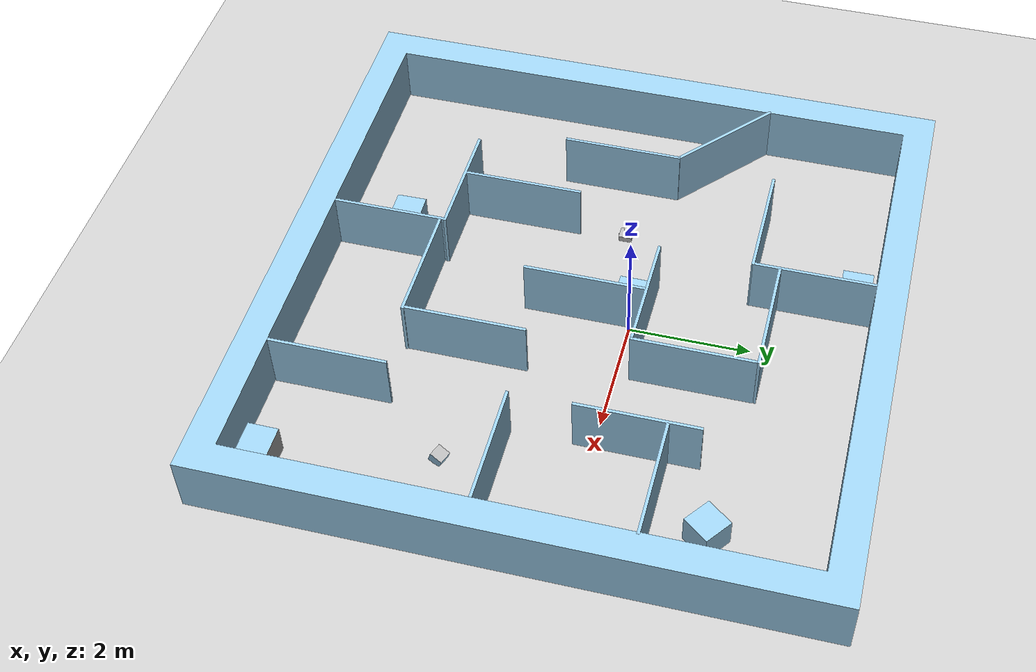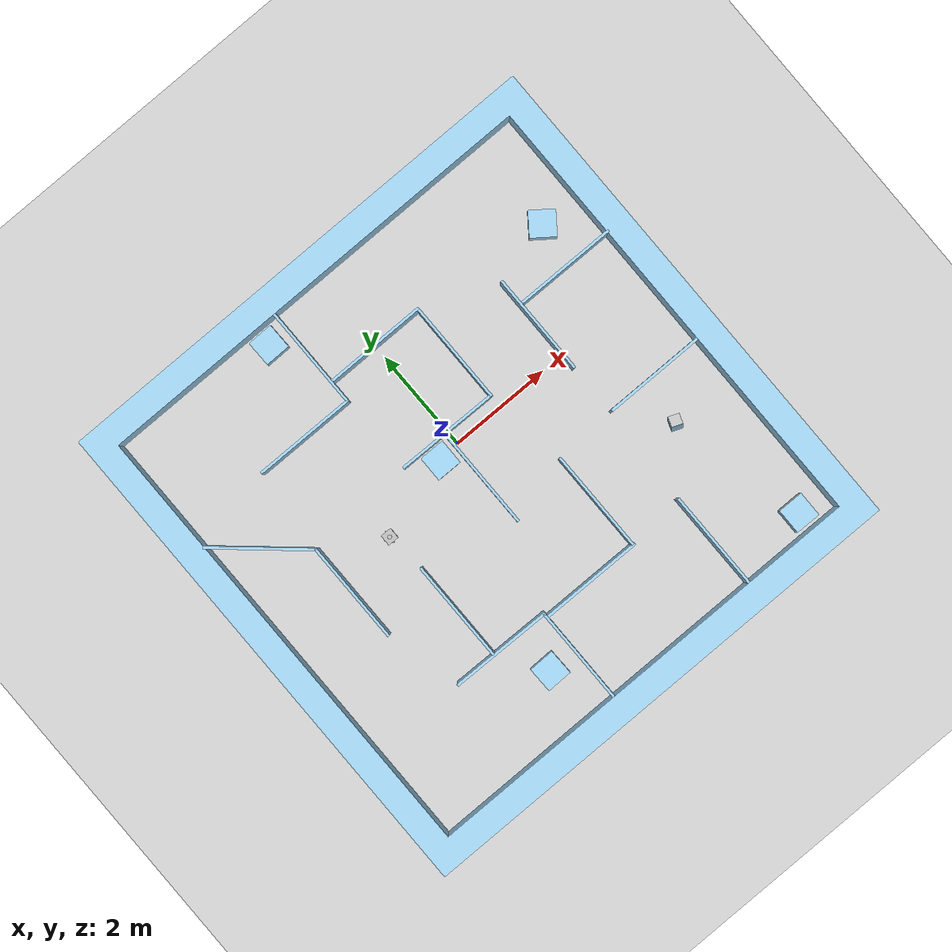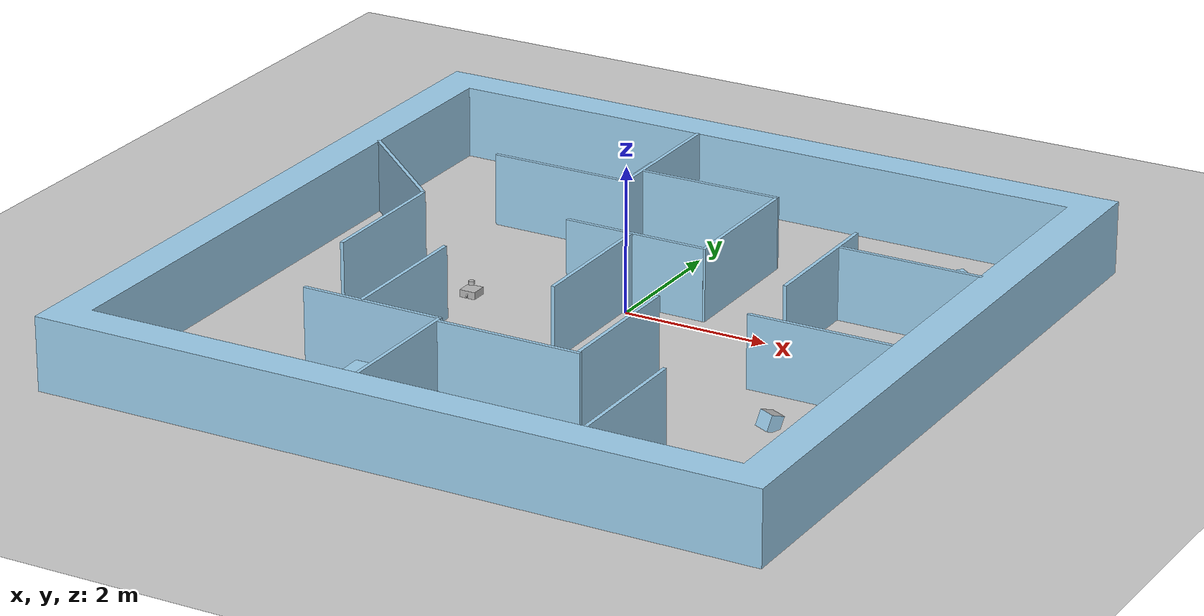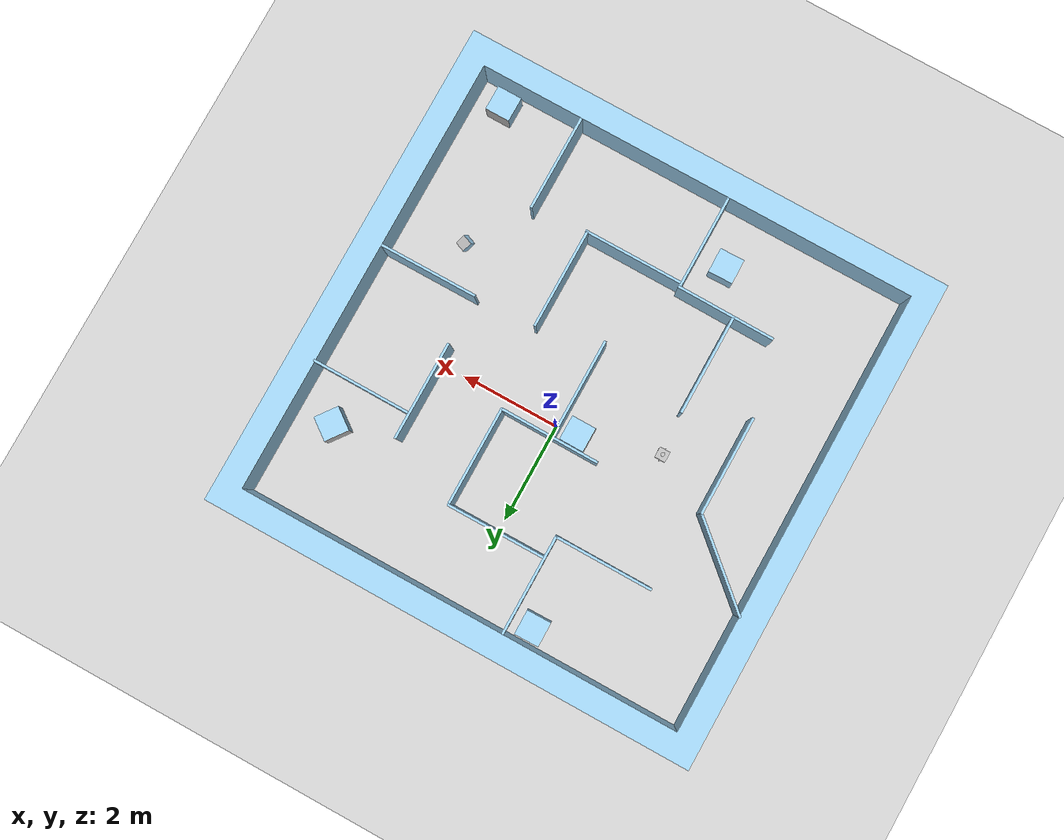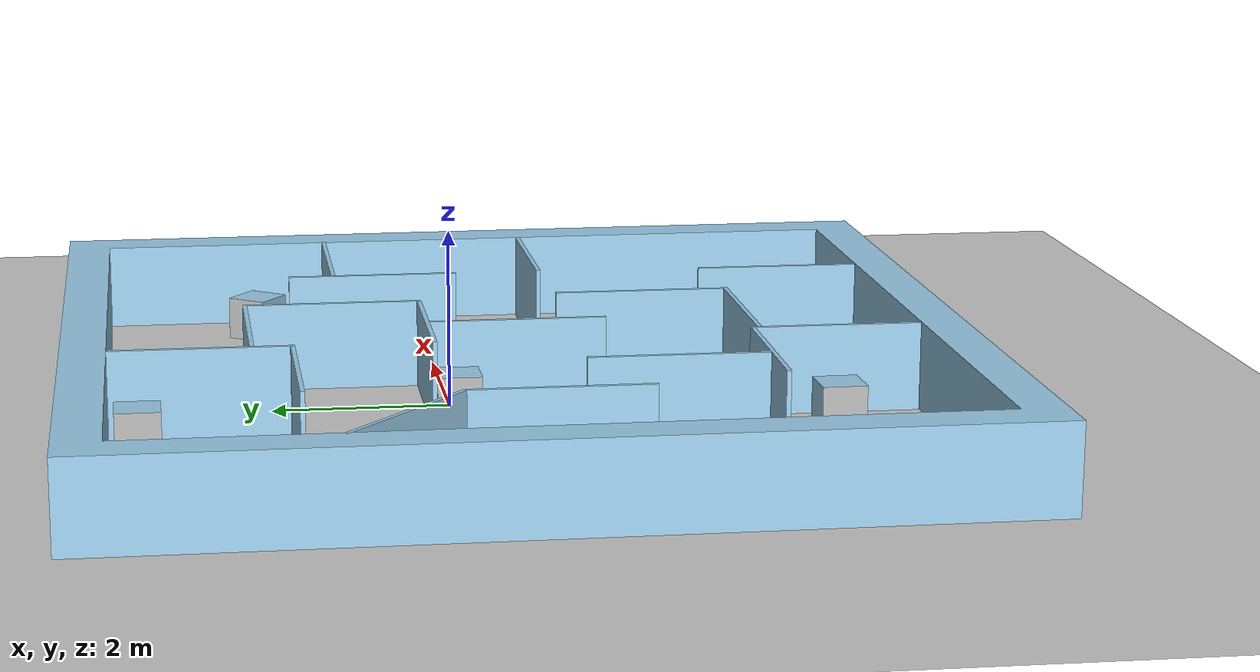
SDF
<sdf version='1.10'>
  <world name='apriltag_world'>
     <physics name="ode" type="ode">
      <max_step_size>0.001</max_step_size>
      <real_time_factor>1.0</real_time_factor>
      <real_time_update_rate>1000</real_time_update_rate>

      <ode>
        <solver>
          <type>quick</type>
          <iters>100</iters>
          <sor>1.3</sor>
        </solver>
        <constraints>
          <cfm>1e-5</cfm>
          <erp>0.2</erp>
        </constraints>
      </ode>
    </physics>
    <plugin name='gz::sim::systems::Physics' filename='gz-sim-physics-system'/>
    <plugin name='gz::sim::systems::UserCommands' filename='gz-sim-user-commands-system'/>
    <plugin name='gz::sim::systems::SceneBroadcaster' filename='gz-sim-scene-broadcaster-system'/>
    <plugin name='gz::sim::systems::Contact' filename='gz-sim-contact-system'/>
    <plugin name='gz::sim::systems::Sensors' filename='gz-sim-sensors-system'>
      <render_engine>ogre2</render_engine>
    </plugin>
    <plugin name="gz::sim::systems::Imu" filename="gz-sim-imu-system"/>
     <gravity>0 0 -9.8000000000000007</gravity>
    <magnetic_field>5.5644999999999998e-06 2.2875799999999999e-05 -4.2388400000000002e-05</magnetic_field>
    <atmosphere type='adiabatic'/>
    <scene>
      <ambient>0.400000006 0.400000006 0.400000006 1</ambient>
      <background>0.699999988 0.699999988 0.699999988 1</background>
      <shadows>true</shadows>
    </scene>
    <model name='ground_plane'>
      <static>true</static>
      <link name='link'>
        <collision name='collision'>
          <geometry>
            <plane>
              <normal>0 0 1</normal>
              <size>100 100</size>
            </plane>
          </geometry>
          <surface>
            <friction>
              <ode/>
            </friction>
            <bounce/>
            <contact/>
          </surface>
        </collision>
        <visual name='visual'>
          <geometry>
            <plane>
              <normal>0 0 1</normal>
              <size>100 100</size>
            </plane>
          </geometry>
          <material>
            <ambient>0.800000012 0.800000012 0.800000012 1</ambient>
            <diffuse>0.800000012 0.800000012 0.800000012 1</diffuse>
            <specular>0.800000012 0.800000012 0.800000012 1</specular>
          </material>
        </visual>
        <pose>0 0 0 0 0 0</pose>
        <inertial>
          <pose>0 0 0 0 0 0</pose>
          <mass>1</mass>
          <inertia>
            <ixx>1</ixx>
            <ixy>0</ixy>
            <ixz>0</ixz>
            <iyy>1</iyy>
            <iyz>0</iyz>
            <izz>1</izz>
          </inertia>
        </inertial>
        <enable_wind>false</enable_wind>
      </link>
      <pose>0 0 0 0 0 0</pose>
      <self_collide>false</self_collide>
    </model>
    <model name='apriltag_id_5'>
      <link name='link'>
        <visual name='visual'>
          <geometry>
            <mesh>
              <uri>apriltag_id_5.dae</uri>
              <scale>0.5 0.5 0.5</scale>
            </mesh>
          </geometry>
        </visual>
        <collision name='collision'>
          <geometry>
            <mesh>
              <uri>apriltag_id_5.dae</uri>
            </mesh>
          </geometry>
        </collision>
        <pose>0 0 0 0 0 0</pose>
        <inertial>
          <pose>0 0 0 0 0 0</pose>
          <mass>1</mass>
          <inertia>
            <ixx>1</ixx>
            <ixy>0</ixy>
            <ixz>0</ixz>
            <iyy>1</iyy>
            <iyz>0</iyz>
            <izz>1</izz>
          </inertia>
        </inertial>
        <enable_wind>false</enable_wind>
      </link>
      <pose>-1.4349983930587769 3.4875249862670898 -0.033252596855163574 6.3820801595628743e-08 3.8693499194046551e-08 -3.1324099995118666</pose>
      <static>true</static>
      <self_collide>false</self_collide>
    </model>
    <model name='apriltag_id_1'>
      <link name='link'>
        <visual name='visual'>
          <geometry>
            <mesh>
              <uri>apriltag_id_1.dae</uri>
              <scale>0.5 0.5 0.5</scale>
            </mesh>
          </geometry>
        </visual>
        <collision name='collision'>
          <geometry>
            <mesh>
              <uri>apriltag_id_1.dae</uri>
            </mesh>
          </geometry>
        </collision>
        <pose>0 0 0 0 0 0</pose>
        <inertial>
          <pose>0 0 0 0 0 0</pose>
          <mass>1</mass>
          <inertia>
            <ixx>1</ixx>
            <ixy>0</ixy>
            <ixz>0</ixz>
            <iyy>1</iyy>
            <iyz>0</iyz>
            <izz>1</izz>
          </inertia>
        </inertial>
        <enable_wind>false</enable_wind>
      </link>
      <pose>-0.42523029446601868 0.35039028525352478 0.24836927652359009 -1.5740699860844178 -0.0027571997383155958 3.1361600002111238</pose>
      <static>true</static>
      <self_collide>false</self_collide>
    </model>
    <model name='apriltag_id_2'>
      <link name='link'>
        <visual name='visual'>
          <geometry>
            <mesh>
              <uri>apriltag_id_2.dae</uri>
              <scale>0.5 0.5 0.5</scale>
            </mesh>
          </geometry>
        </visual>
        <collision name='collision'>
          <geometry>
            <mesh>
              <uri>apriltag_id_2.dae</uri>
            </mesh>
          </geometry>
        </collision>
        <pose>0 0 0 0 0 0</pose>
        <inertial>
          <pose>0 0 0 0 0 0</pose>
          <mass>1</mass>
          <inertia>
            <ixx>1</ixx>
            <ixy>0</ixy>
            <ixz>0</ixz>
            <iyy>1</iyy>
            <iyz>0</iyz>
            <izz>1</izz>
          </inertia>
        </inertial>
        <enable_wind>false</enable_wind>
      </link>
      <pose>3.6687350273132324 1.9999301433563232 0.56916892528533936 -3.1396199999491197 -0.00085396996937193374 2.4993999678469643</pose>
      <static>true</static>
      <self_collide>false</self_collide>
    </model>
    <model name='apriltag_id_3'>
      <link name='link'>
        <visual name='visual'>
          <geometry>
            <mesh>
              <uri>apriltag_id_3.dae</uri>
              <scale>0.5 0.5 0.5</scale>
            </mesh>
          </geometry>
        </visual>
        <collision name='collision'>
          <geometry>
            <mesh>
              <uri>apriltag_id_3.dae</uri>
            </mesh>
          </geometry>
        </collision>
        <pose>0 0 0 0 0 0</pose>
        <inertial>
          <pose>0 0 0 0 0 0</pose>
          <mass>1</mass>
          <inertia>
            <ixx>1</ixx>
            <ixy>0</ixy>
            <ixz>0</ixz>
            <iyy>1</iyy>
            <iyz>0</iyz>
            <izz>1</izz>
          </inertia>
        </inertial>
        <enable_wind>false</enable_wind>
      </link>
      <pose>-1.3442610502243042 -4.162020206451416 0.51893758773803711 3.1396800000641742 -0.0017011200338837779 -3.124530000932626</pose>
      <static>true</static>
      <self_collide>false</self_collide>
    </model>
    <model name='apriltag_id_4'>
      <link name='link'>
        <visual name='visual'>
          <geometry>
            <mesh>
              <uri>apriltag_id_4.dae</uri>
              <scale>0.5 0.5 0.5</scale>
            </mesh>
          </geometry>
        </visual>
        <collision name='collision'>
          <geometry>
            <mesh>
              <uri>apriltag_id_4.dae</uri>
            </mesh>
          </geometry>
        </collision>
        <pose>0 0 0 0 0 0</pose>
        <inertial>
          <pose>0 0 0 0 0 0</pose>
          <mass>1</mass>
          <inertia>
            <ixx>1</ixx>
            <ixy>0</ixy>
            <ixz>0</ixz>
            <iyy>1</iyy>
            <iyz>0</iyz>
            <izz>1</izz>
          </inertia>
        </inertial>
        <enable_wind>false</enable_wind>
      </link>
      <pose>3.8371202945709229 -4.863131046295166 0.51676762104034424 3.1401299998921659 0.0014222400067548714 1.5666099311289439</pose>
      <static>true</static>
      <self_collide>false</self_collide>
    </model>
    <model name='RockCubeTest'>
      <link name='link'>
        <visual name='visual'>
          <geometry>
            <mesh>
              <uri>RockCubeTest.dae</uri>
              <scale>2.5 2.5 2.5</scale>
            </mesh>
          </geometry>
        </visual>
        <collision name='collision'>
          <geometry>
            <mesh>
              <uri>RockCubeTest.dae</uri>
            </mesh>
          </geometry>
        </collision>
        <pose>0 0 0 0 0 0</pose>
        <inertial>
          <pose>0 0 0 0 0 0</pose>
          <mass>1</mass>
          <inertia>
            <ixx>1</ixx>
            <ixy>0</ixy>
            <ixz>0</ixz>
            <iyy>1</iyy>
            <iyz>0</iyz>
            <izz>1</izz>
          </inertia>
        </inertial>
        <enable_wind>false</enable_wind>
      </link>
      <pose>3.6487016677856445 -2.3238639831542969 -0.5 -1.3776799277519831 -1.214220004715922 1.0071299416143733</pose>
      <static>true</static>
      <self_collide>false</self_collide>
    </model>
    <model name='SmallWalls'>
      <link name='link'>
        <visual name='visual'>
          <geometry>
            <mesh>
              <uri>SmallWalls.dae</uri>
            </mesh>
          </geometry>
        </visual>
        <collision name='collision'>
          <geometry>
            <mesh>
              <uri>SmallWalls.dae</uri>
            </mesh>
          </geometry>
        </collision>
        <pose>0 0 0 0 0 0</pose>
        <inertial>
          <pose>0 0 0 0 0 0</pose>
          <mass>1</mass>
          <inertia>
            <ixx>1</ixx>
            <ixy>0</ixy>
            <ixz>0</ixz>
            <iyy>1</iyy>
            <iyz>0</iyz>
            <izz>1</izz>
          </inertia>
        </inertial>
        <enable_wind>false</enable_wind>
      </link>
      <pose>-0.066166944801807404 -0.76203000545501709 0 0 0 0</pose>
      <static>true</static>
      <self_collide>false</self_collide>
    </model>
    <model name='SmallWalls_0'>
      <link name='link'>
        <visual name='visual'>
          <geometry>
            <mesh>
              <uri>SmallWalls.dae</uri>
            </mesh>
          </geometry>
        </visual>
        <collision name='collision'>
          <geometry>
            <mesh>
              <uri>SmallWalls.dae</uri>
            </mesh>
          </geometry>
        </collision>
        <pose>0 0 0 0 0 0</pose>
        <inertial>
          <pose>0 0 0 0 0 0</pose>
          <mass>1</mass>
          <inertia>
            <ixx>1</ixx>
            <ixy>0</ixy>
            <ixz>0</ixz>
            <iyy>1</iyy>
            <iyz>0</iyz>
            <izz>1</izz>
          </inertia>
        </inertial>
        <enable_wind>false</enable_wind>
      </link>
      <pose>0.010166680440306219 2.2420046329498291 0 0 0 -1.5687701201692656</pose>
      <static>true</static>
      <self_collide>false</self_collide>
    </model>
    <model name='SmallWalls_1'>
      <link name='link'>
        <visual name='visual'>
          <geometry>
            <mesh>
              <uri>SmallWalls.dae</uri>
            </mesh>
          </geometry>
        </visual>
        <collision name='collision'>
          <geometry>
            <mesh>
              <uri>SmallWalls.dae</uri>
            </mesh>
          </geometry>
        </collision>
        <pose>0 0 0 0 0 0</pose>
        <inertial>
          <pose>0 0 0 0 0 0</pose>
          <mass>1</mass>
          <inertia>
            <ixx>1</ixx>
            <ixy>0</ixy>
            <ixz>0</ixz>
            <iyy>1</iyy>
            <iyz>0</iyz>
            <izz>1</izz>
          </inertia>
        </inertial>
        <enable_wind>false</enable_wind>
      </link>
      <pose>3.4457695484161373 1.1337280273437498 0 0 0 -1.5744299354180344</pose>
      <static>true</static>
      <self_collide>false</self_collide>
    </model>
    <model name='SmallWalls_2'>
      <link name='link'>
        <visual name='visual'>
          <geometry>
            <mesh>
              <uri>SmallWalls.dae</uri>
            </mesh>
          </geometry>
        </visual>
        <collision name='collision'>
          <geometry>
            <mesh>
              <uri>SmallWalls.dae</uri>
            </mesh>
          </geometry>
        </collision>
        <pose>0 0 0 0 0 0</pose>
        <inertial>
          <pose>0 0 0 0 0 0</pose>
          <mass>1</mass>
          <inertia>
            <ixx>1</ixx>
            <ixy>0</ixy>
            <ixz>0</ixz>
            <iyy>1</iyy>
            <iyz>0</iyz>
            <izz>1</izz>
          </inertia>
        </inertial>
        <enable_wind>false</enable_wind>
      </link>
      <pose>-0.77648550271987915 -4.2875800132751465 0 0 0 0</pose>
      <static>true</static>
      <self_collide>false</self_collide>
    </model>
    <model name='SmallWalls_3'>
      <link name='link'>
        <visual name='visual'>
          <geometry>
            <mesh>
              <uri>SmallWalls.dae</uri>
            </mesh>
          </geometry>
        </visual>
        <collision name='collision'>
          <geometry>
            <mesh>
              <uri>SmallWalls.dae</uri>
            </mesh>
          </geometry>
        </collision>
        <pose>0 0 0 0 0 0</pose>
        <inertial>
          <pose>0 0 0 0 0 0</pose>
          <mass>1</mass>
          <inertia>
            <ixx>1</ixx>
            <ixy>0</ixy>
            <ixz>0</ixz>
            <iyy>1</iyy>
            <iyz>0</iyz>
            <izz>1</izz>
          </inertia>
        </inertial>
        <enable_wind>false</enable_wind>
      </link>
      <pose>-1.7467117309570312 -3.286246776580811 0 0 0 1.5599400280223861</pose>
      <static>true</static>
      <self_collide>false</self_collide>
    </model>
    <model name='SmallWalls_4'>
      <link name='link'>
        <visual name='visual'>
          <geometry>
            <mesh>
              <uri>SmallWalls.dae</uri>
            </mesh>
          </geometry>
        </visual>
        <collision name='collision'>
          <geometry>
            <mesh>
              <uri>SmallWalls.dae</uri>
            </mesh>
          </geometry>
        </collision>
        <pose>0 0 0 0 0 0</pose>
        <inertial>
          <pose>0 0 0 0 0 0</pose>
          <mass>1</mass>
          <inertia>
            <ixx>1</ixx>
            <ixy>0</ixy>
            <ixz>0</ixz>
            <iyy>1</iyy>
            <iyz>0</iyz>
            <izz>1</izz>
          </inertia>
        </inertial>
        <enable_wind>false</enable_wind>
      </link>
      <pose>-3.861743688583374 0.81394708156585671 0 0 0 0.85221198741909721</pose>
      <static>true</static>
      <self_collide>false</self_collide>
    </model>
    <model name='SmallWalls_5'>
      <link name='link'>
        <visual name='visual'>
          <geometry>
            <mesh>
              <uri>SmallWalls.dae</uri>
            </mesh>
          </geometry>
        </visual>
        <collision name='collision'>
          <geometry>
            <mesh>
              <uri>SmallWalls.dae</uri>
            </mesh>
          </geometry>
        </collision>
        <pose>0 0 0 0 0 0</pose>
        <inertial>
          <pose>0 0 0 0 0 0</pose>
          <mass>1</mass>
          <inertia>
            <ixx>1</ixx>
            <ixy>0</ixy>
            <ixz>0</ixz>
            <iyy>1</iyy>
            <iyz>0</iyz>
            <izz>1</izz>
          </inertia>
        </inertial>
        <enable_wind>false</enable_wind>
      </link>
      <pose>-1.0055700540542603 2.7991597652435303 0 0 0 0</pose>
      <static>true</static>
      <self_collide>false</self_collide>
    </model>
    <model name='SmallWalls_6'>
      <link name='link'>
        <visual name='visual'>
          <geometry>
            <mesh>
              <uri>SmallWalls.dae</uri>
            </mesh>
          </geometry>
        </visual>
        <collision name='collision'>
          <geometry>
            <mesh>
              <uri>SmallWalls.dae</uri>
            </mesh>
          </geometry>
        </collision>
        <pose>0 0 0 0 0 0</pose>
        <inertial>
          <pose>0 0 0 0 0 0</pose>
          <mass>1</mass>
          <inertia>
            <ixx>1</ixx>
            <ixy>0</ixy>
            <ixz>0</ixz>
            <iyy>1</iyy>
            <iyz>0</iyz>
            <izz>1</izz>
          </inertia>
        </inertial>
        <enable_wind>false</enable_wind>
      </link>
      <pose>2.430880069732666 0.6673586368560791 0 0 0 0</pose>
      <static>true</static>
      <self_collide>false</self_collide>
    </model>
    <model name='SmallWalls_7'>
      <link name='link'>
        <visual name='visual'>
          <geometry>
            <mesh>
              <uri>SmallWalls.dae</uri>
            </mesh>
          </geometry>
        </visual>
        <collision name='collision'>
          <geometry>
            <mesh>
              <uri>SmallWalls.dae</uri>
            </mesh>
          </geometry>
        </collision>
        <pose>0 0 0 0 0 0</pose>
        <inertial>
          <pose>0 0 0 0 0 0</pose>
          <mass>1</mass>
          <inertia>
            <ixx>1</ixx>
            <ixy>0</ixy>
            <ixz>0</ixz>
            <iyy>1</iyy>
            <iyz>0</iyz>
            <izz>1</izz>
          </inertia>
        </inertial>
        <enable_wind>false</enable_wind>
      </link>
      <pose>1.2077184915542603 -2.3749899864196777 0 0 0 0</pose>
      <static>true</static>
      <self_collide>false</self_collide>
    </model>
    <model name='SmallWalls_8'>
      <link name='link'>
        <visual name='visual'>
          <geometry>
            <mesh>
              <uri>SmallWalls.dae</uri>
            </mesh>
          </geometry>
        </visual>
        <collision name='collision'>
          <geometry>
            <mesh>
              <uri>SmallWalls.dae</uri>
            </mesh>
          </geometry>
        </collision>
        <pose>0 0 0 0 0 0</pose>
        <inertial>
          <pose>0 0 0 0 0 0</pose>
          <mass>1</mass>
          <inertia>
            <ixx>1</ixx>
            <ixy>0</ixy>
            <ixz>0</ixz>
            <iyy>1</iyy>
            <iyz>0</iyz>
            <izz>1</izz>
          </inertia>
        </inertial>
        <enable_wind>false</enable_wind>
      </link>
      <pose>2.3378596305847168 -4.2706999778747559 0 0 0 0</pose>
      <static>true</static>
      <self_collide>false</self_collide>
    </model>
    <model name='SmallWalls_9'>
      <link name='link'>
        <visual name='visual'>
          <geometry>
            <mesh>
              <uri>SmallWalls.dae</uri>
            </mesh>
          </geometry>
        </visual>
        <collision name='collision'>
          <geometry>
            <mesh>
              <uri>SmallWalls.dae</uri>
            </mesh>
          </geometry>
        </collision>
        <pose>0 0 0 0 0 0</pose>
        <inertial>
          <pose>0 0 0 0 0 0</pose>
          <mass>1</mass>
          <inertia>
            <ixx>1</ixx>
            <ixy>0</ixy>
            <ixz>0</ixz>
            <iyy>1</iyy>
            <iyz>0</iyz>
            <izz>1</izz>
          </inertia>
        </inertial>
        <enable_wind>false</enable_wind>
      </link>
      <pose>3.4378094673156734 -1.3327199220657349 0 0 0 1.572009981192841</pose>
      <static>true</static>
      <self_collide>false</self_collide>
    </model>
    <model name='SmallWalls_10'>
      <link name='link'>
        <visual name='visual'>
          <geometry>
            <mesh>
              <uri>SmallWalls.dae</uri>
            </mesh>
          </geometry>
        </visual>
        <collision name='collision'>
          <geometry>
            <mesh>
              <uri>SmallWalls.dae</uri>
            </mesh>
          </geometry>
        </collision>
        <pose>0 0 0 0 0 0</pose>
        <inertial>
          <pose>0 0 0 0 0 0</pose>
          <mass>1</mass>
          <inertia>
            <ixx>1</ixx>
            <ixy>0</ixy>
            <ixz>0</ixz>
            <iyy>1</iyy>
            <iyz>0</iyz>
            <izz>1</izz>
          </inertia>
        </inertial>
        <enable_wind>false</enable_wind>
      </link>
      <pose>-0.016117287799715996 0.25545668601989741 0 0 0 1.5628300136794739</pose>
      <static>true</static>
      <self_collide>false</self_collide>
    </model>
    <model name='SmallWalls_11'>
      <link name='link'>
        <visual name='visual'>
          <geometry>
            <mesh>
              <uri>SmallWalls.dae</uri>
            </mesh>
          </geometry>
        </visual>
        <collision name='collision'>
          <geometry>
            <mesh>
              <uri>SmallWalls.dae</uri>
            </mesh>
          </geometry>
        </collision>
        <pose>0 0 0 0 0 0</pose>
        <inertial>
          <pose>0 0 0 0 0 0</pose>
          <mass>1</mass>
          <inertia>
            <ixx>1</ixx>
            <ixy>0</ixy>
            <ixz>0</ixz>
            <iyy>1</iyy>
            <iyz>0</iyz>
            <izz>1</izz>
          </inertia>
        </inertial>
        <enable_wind>false</enable_wind>
      </link>
      <pose>-3.113149881362915 -0.83027827739715576 0 0 0 0</pose>
      <static>true</static>
      <self_collide>false</self_collide>
    </model>
    <model name='BigWalls'>
      <link name='link'>
        <visual name='visual'>
          <geometry>
            <mesh>
              <uri>BigWalls.dae</uri>
            </mesh>
          </geometry>
        </visual>
        <collision name='collision'>
          <geometry>
            <mesh>
              <uri>BigWalls.dae</uri>
            </mesh>
          </geometry>
        </collision>
        <pose>0 0 0 0 0 0</pose>
        <inertial>
          <pose>0 0 0 0 0 0</pose>
          <mass>1</mass>
          <inertia>
            <ixx>1</ixx>
            <ixy>0</ixy>
            <ixz>0</ixz>
            <iyy>1</iyy>
            <iyz>0</iyz>
            <izz>1</izz>
          </inertia>
        </inertial>
        <enable_wind>false</enable_wind>
      </link>
      <pose>-0.089006900787353516 -0.25802901387214661 -0.6261979341506958 0 0 0</pose>
      <static>true</static>
      <self_collide>false</self_collide>
    </model>
    <model name='SmallWalls_12'>
      <link name='link'>
        <visual name='visual'>
          <geometry>
            <mesh>
              <uri>SmallWalls.dae</uri>
            </mesh>
          </geometry>
        </visual>
        <collision name='collision'>
          <geometry>
            <mesh>
              <uri>SmallWalls.dae</uri>
            </mesh>
          </geometry>
        </collision>
        <pose>0 0 0 0 0 0</pose>
        <inertial>
          <pose>0 0 0 0 0 0</pose>
          <mass>1</mass>
          <inertia>
            <ixx>1</ixx>
            <ixy>0</ixy>
            <ixz>0</ixz>
            <iyy>1</iyy>
            <iyz>0</iyz>
            <izz>1</izz>
          </inertia>
        </inertial>
        <enable_wind>false</enable_wind>
      </link>
      <pose>-1.9140762910817881 -2.2747680539788195 0 0 0 0</pose>
      <static>true</static>
      <self_collide>false</self_collide>
    </model>
    <model name='SmallWalls_13'>
      <link name='link'>
        <visual name='visual'>
          <geometry>
            <mesh>
              <uri>SmallWalls.dae</uri>
            </mesh>
          </geometry>
        </visual>
        <collision name='collision'>
          <geometry>
            <mesh>
              <uri>SmallWalls.dae</uri>
            </mesh>
          </geometry>
        </collision>
        <pose>0 0 0 0 0 0</pose>
        <inertial>
          <pose>0 0 0 0 0 0</pose>
          <mass>1</mass>
          <inertia>
            <ixx>1</ixx>
            <ixy>0</ixy>
            <ixz>0</ixz>
            <iyy>1</iyy>
            <iyz>0</iyz>
            <izz>1</izz>
          </inertia>
        </inertial>
        <enable_wind>false</enable_wind>
      </link>
      <pose>0.24603775143623358 -3.379301786422729 0 0 0 1.5684499138698043</pose>
      <static>true</static>
      <self_collide>false</self_collide>
    </model>
    <model name='SmallWalls_14'>
      <link name='link'>
        <visual name='visual'>
          <geometry>
            <mesh>
              <uri>SmallWalls.dae</uri>
            </mesh>
          </geometry>
        </visual>
        <collision name='collision'>
          <geometry>
            <mesh>
              <uri>SmallWalls.dae</uri>
            </mesh>
          </geometry>
        </collision>
        <pose>0 0 0 0 0 0</pose>
        <inertial>
          <pose>0 0 0 0 0 0</pose>
          <mass>1</mass>
          <inertia>
            <ixx>1</ixx>
            <ixy>0</ixy>
            <ixz>0</ixz>
            <iyy>1</iyy>
            <iyz>0</iyz>
            <izz>1</izz>
          </inertia>
        </inertial>
        <enable_wind>false</enable_wind>
      </link>
      <pose>-1.9807525873184206 1.8031682968139648 0 0 0 -1.572510069143138</pose>
      <static>true</static>
      <self_collide>false</self_collide>
    </model>
    <model name='SmallWalls_15'>
      <link name='link'>
        <visual name='visual'>
          <geometry>
            <mesh>
              <uri>SmallWalls.dae</uri>
            </mesh>
          </geometry>
        </visual>
        <collision name='collision'>
          <geometry>
            <mesh>
              <uri>SmallWalls.dae</uri>
            </mesh>
          </geometry>
        </collision>
        <pose>0 0 0 0 0 0</pose>
        <inertial>
          <pose>0 0 0 0 0 0</pose>
          <mass>1</mass>
          <inertia>
            <ixx>1</ixx>
            <ixy>0</ixy>
            <ixz>0</ixz>
            <iyy>1</iyy>
            <iyz>0</iyz>
            <izz>1</izz>
          </inertia>
        </inertial>
        <enable_wind>false</enable_wind>
      </link>
      <pose>0.98964799121350522 1.224901396191284 0 0 0 0</pose>
      <static>true</static>
      <self_collide>false</self_collide>
    </model>
    <light name='sun' type='directional'>
      <pose>0 0 10 0 0 0</pose>
      <cast_shadows>true</cast_shadows>
      <intensity>1</intensity>
      <direction>-0.5 0.10000000000000001 -0.90000000000000002</direction>
      <diffuse>0.800000012 0.800000012 0.800000012 1</diffuse>
      <specular>0.200000003 0.200000003 0.200000003 1</specular>
      <attenuation>
        <range>1000</range>
        <linear>0.0099999997764825821</linear>
        <constant>0.89999997615814209</constant>
        <quadratic>0.0010000000474974513</quadratic>
      </attenuation>
      <spot>
        <inner_angle>0</inner_angle>
        <outer_angle>0</outer_angle>
        <falloff>0</falloff>
      </spot>
    </light>
    <include>
      <uri>turtlebot3_waffle_gz</uri>
      <name>turtlebot3_waffle</name>
      <pose>-2.0 -0.5 0.01 0 0 0</pose>
    </include>
  </world>
</sdf>

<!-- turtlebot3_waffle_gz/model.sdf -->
<sdf version="1.9">
  <model name="turtlebot3_waffle">

    <!-- Spawn slightly above ground -->
    <pose>0 0 0.12 0 0 0</pose>

    <!-- ================= BASE ================= -->
    <link name="base_link">

      <!-- LOW CENTER OF MASS -->
      <pose>0 0 0.05 0 0 0</pose>

      <inertial>
        <mass>3.2</mass>
        <inertia>
          <ixx>0.045</ixx>
          <iyy>0.045</iyy>
          <izz>0.065</izz>
        </inertia>
      </inertial>

      <!-- BIG FLAT CONTACT PATCH -->
      <collision name="base_collision">
        <geometry>
          <box>
            <size>0.22 0.22 0.10</size>
          </box>
        </geometry>
        <surface>
          <contact>
            <stiffness>8000</stiffness>
            <damping>300</damping>
          </contact>
          <friction>
            <ode>
              <mu>1.2</mu>
              <mu2>1.2</mu2>
            </ode>
          </friction>
        </surface>
      </collision>

      <visual name="base_visual">
        <geometry>
          <box>
            <size>0.22 0.22 0.10</size>
          </box>
        </geometry>
      </visual>
    </link>

    <!-- ================= LIDAR ================= -->
    <link name="base_scan">
    <!-- Centered on robot, slightly above base -->
    <pose>0 0 0.18 0 0 0</pose>

    <inertial>
        <mass>0.05</mass>
        <inertia>
        <ixx>0.0002</ixx>
        <iyy>0.0002</iyy>
        <izz>0.0002</izz>
        </inertia>
    </inertial>

    <visual name="lidar_visual">
        <geometry>
        <cylinder>
            <radius>0.04</radius>
            <length>0.05</length>
        </cylinder>
        </geometry>
    </visual>

    <collision name="lidar_collision">
        <geometry>
        <cylinder>
            <radius>0.04</radius>
            <length>0.05</length>
        </cylinder>
        </geometry>
    </collision>

    <!-- LiDAR SENSOR -->
    <sensor name="lidar" type="gpu_lidar">
        <always_on>true</always_on>
        <update_rate>10</update_rate>
        <topic>/scan</topic>
        <gz_frame_id>base_scan</gz_frame_id>
        <visualize>true</visualize>

        <lidar>
        <scan>
            <horizontal>
            <samples>360</samples>
            <min_angle>-3.14159</min_angle>
            <max_angle>3.14159</max_angle>
            </horizontal>
        </scan>
        <range>
            <min>0.12</min>
            <max>3.5</max>
        </range>
        </lidar>
    </sensor>
    </link>

    <!-- ================= LEFT WHEEL ================= -->
    <link name="wheel_left_link">
      <pose>0 0.10 0.033 0 1.5708 0</pose>

      <inertial>
        <mass>0.18</mass>
        <inertia>
          <ixx>0.0006</ixx>
          <iyy>0.0006</iyy>
          <izz>0.0006</izz>
        </inertia>
      </inertial>

      <collision name="wheel_left_collision">
        <geometry>
          <cylinder>
            <radius>0.033</radius>
            <length>0.018</length>
          </cylinder>
        </geometry>
        <surface>
          <contact>
            <stiffness>6000</stiffness>
            <damping>250</damping>
          </contact>
          <friction>
            <ode>
              <mu>2.0</mu>
              <mu2>2.0</mu2>
            </ode>
          </friction>
        </surface>
      </collision>

      <visual name="wheel_left_visual">
        <geometry>
          <cylinder>
            <radius>0.033</radius>
            <length>0.018</length>
          </cylinder>
        </geometry>
      </visual>
    </link>

    <!-- ================= RIGHT WHEEL ================= -->
    <link name="wheel_right_link">
      <pose>0 -0.10 0.033 0 1.5708 0</pose>

      <inertial>
        <mass>0.18</mass>
        <inertia>
          <ixx>0.0006</ixx>
          <iyy>0.0006</iyy>
          <izz>0.0006</izz>
        </inertia>
      </inertial>

      <collision name="wheel_right_collision">
        <geometry>
          <cylinder>
            <radius>0.033</radius>
            <length>0.018</length>
          </cylinder>
        </geometry>
        <surface>
          <contact>
            <stiffness>6000</stiffness>
            <damping>250</damping>
          </contact>
          <friction>
            <ode>
              <mu>2.0</mu>
              <mu2>2.0</mu2>
            </ode>
          </friction>
        </surface>
      </collision>

      <visual name="wheel_right_visual">
        <geometry>
          <cylinder>
            <radius>0.033</radius>
            <length>0.018</length>
          </cylinder>
        </geometry>
      </visual>
    </link>

    <!-- ================= CASTER ================= -->
    <link name="caster_back_link">
      <pose>-0.11 0 0.015 0 0 0</pose>

      <inertial>
        <mass>0.08</mass>
        <inertia>
          <ixx>0.0002</ixx>
          <iyy>0.0002</iyy>
          <izz>0.0002</izz>
        </inertia>
      </inertial>

      <collision name="caster_collision">
        <geometry>
          <sphere>
            <radius>0.015</radius>
          </sphere>
        </geometry>
        <surface>
          <contact>
            <stiffness>5000</stiffness>
            <damping>400</damping>
          </contact>
          <friction>
            <ode>
              <mu>0.8</mu>
              <mu2>0.8</mu2>
            </ode>
          </friction>
        </surface>
      </collision>

      <visual name="caster_visual">
        <geometry>
          <sphere>
            <radius>0.015</radius>
          </sphere>
        </geometry>
      </visual>
    </link>

    <!-- ================= JOINTS ================= -->

    <joint name="base_scan_joint" type="fixed">
        <parent>base_link</parent>
        <child>base_scan</child>
    </joint>

    <joint name="wheel_left_joint" type="revolute">
      <parent>base_link</parent>
      <child>wheel_left_link</child>
      <axis>
        <xyz>0 1 0</xyz>
      </axis>
    </joint>

    <joint name="wheel_right_joint" type="revolute">
      <parent>base_link</parent>
      <child>wheel_right_link</child>
      <axis>
        <xyz>0 1 0</xyz>
      </axis>
    </joint>

    <joint name="caster_joint" type="ball">
      <parent>base_link</parent>
      <child>caster_back_link</child>
    </joint>

    <!-- ================= DIFF DRIVE ================= -->
    <plugin filename="gz-sim-diff-drive-system"
            name="gz::sim::systems::DiffDrive">
      <left_joint>wheel_left_joint</left_joint>
      <right_joint>wheel_right_joint</right_joint>
      <wheel_separation>0.20</wheel_separation>
      <wheel_radius>0.033</wheel_radius>
      <odom_publish_frequency>50</odom_publish_frequency>
      <topic>/cmd_vel</topic>
      <odom_topic>/odom</odom_topic>
      <frame_id>odom</frame_id>
      <child_frame_id>base_link</child_frame_id>
    </plugin>

    <!-- Pose Publisher -->
    <plugin filename="gz-sim-pose-publisher-system" name="gz::sim::systems::PosePublisher">
      <publish_link_pose>true</publish_link_pose>
      <publish_sensor_pose>true</publish_sensor_pose>
      <publish_collision_pose>false</publish_collision_pose>
      <publish_visual_pose>false</publish_visual_pose>
      <publish_nested_model_pose>true</publish_nested_model_pose>
      <update_frequency>50</update_frequency>
    </plugin>

  </model>
</sdf>
